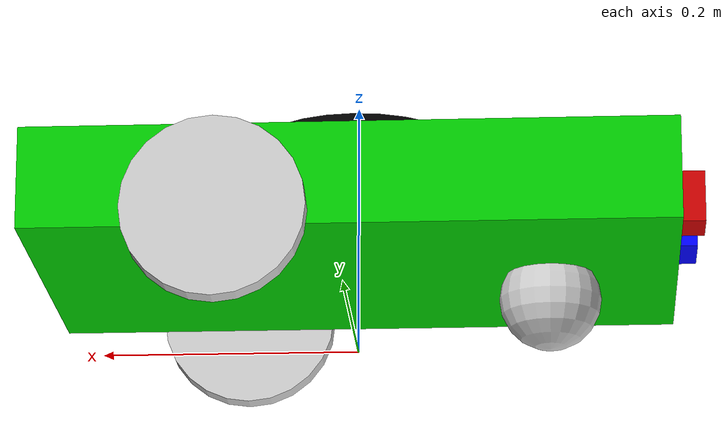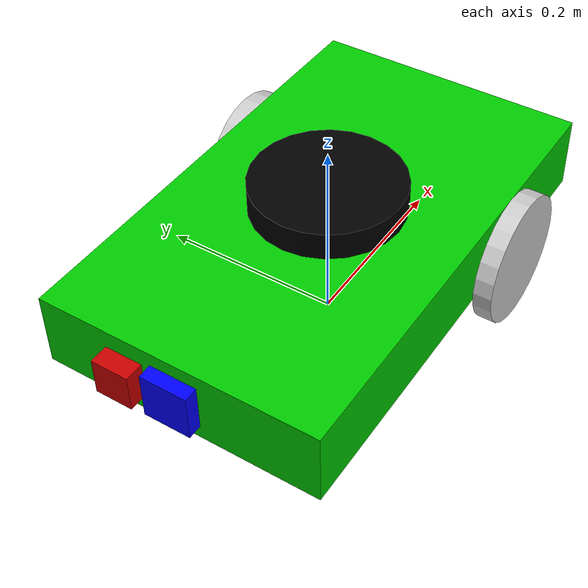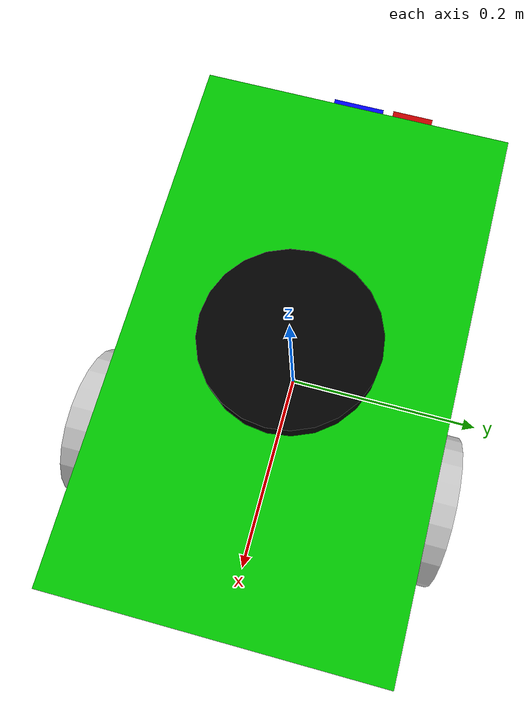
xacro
<?xml version="1.0"?>
<robot name="mobile_robot" xmlns:xacro="http://www.ros.org/wiki/xacro">

  <xacro:include filename="$(find mobile_description)/urdf/mech/mobile_robot_base.urdf.xacro"/>
  <xacro:include filename="$(find mobile_description)/urdf/sensors/rgbd_camera.urdf.xacro"/>
  <xacro:include filename="$(find mobile_description)/urdf/sensors/lidar.urdf.xacro"/>
  <xacro:include filename="$(find mobile_description)/urdf/sensors/imu.urdf.xacro"/>
  <xacro:include filename="$(find mobile_description)/urdf/control/mobile_robot_ros2_control.urdf.xacro"/>
  <xacro:include filename="$(find mobile_description)/urdf/control/gazebo_sim_ros2_control.urdf.xacro"/>

  <xacro:mobile_robot_base/>
  <xacro:rgbd_camera/>
  <xacro:lidar_sensor parent="base_link" xyz="0.0 0.0 ${base_height/2 + lidar_length/2}" rpy="0 0 3.14159"/>
  <xacro:imu_link parent="base_link" xyz="${-(base_length/2)-(imu_length/2)} ${(rgbd_camera_width/2)+(imu_width/2)+(offset)} 0" rpy="0 0 0"/>
  <xacro:mobile_robot_ros2_control use_gazebo="true"/>
  <xacro:load_gazebo_sim_ros2_control_plugin robot_name="mobile_robot" use_gazebo="true"/>

</robot>

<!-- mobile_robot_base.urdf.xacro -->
<robot xmlns:xacro="http://www.ros.org/wiki/xacro">
<xacro:property name="base_length" value="0.5" />
<xacro:property name="base_width" value="0.3" />
<xacro:property name="base_height" value="0.08" />
<xacro:property name="offset" value="0.01" />
<xacro:property name="cylindrical_wheel_radius" value="0.07" />
<xacro:property name="cylindrical_wheel_length" value="0.02" />
<xacro:property name="caster_wheel_radius" value="0.04" />
<xacro:property name="base_mass" value="5.0" />
<xacro:property name="cylindrical_wheel_mass" value="0.5" />
<xacro:property name="caster_wheel_mass" value="0.3" />

<xacro:macro name="mobile_robot_base">

    <material name="green">
        <color rgba="0 0.8 0 1"/>
    </material>

    <material name="grey">
        <color rgba="0.8 0.8 0.8 1.0"/>
    </material>

    <link name="base_footprint" />

    <link name="base_link">
        <visual>
            <geometry>
                <box size="${base_length} ${base_width} ${base_height}"/>
            </geometry>
            <origin xyz="0 0 0" rpy="0 0 0"/>
            <material name="green"/>
        </visual>
        <collision>
            <geometry>
                <box size="${base_length} ${base_width} ${base_height}"/>
            </geometry>
            <origin xyz="0 0 0" rpy="0 0 0"/>
        </collision>
        <inertial>
            <mass value="${base_mass}"/>
            <inertia ixx="${(1/12) * base_mass * (base_width * base_width + base_height * base_height)}"
                iyy="${(1/12) * base_mass * (base_length * base_length + base_height * base_height)}"
                izz="${(1/12) * base_mass * (base_length * base_length + base_width * base_width)}"
                ixy="0" ixz="0" iyz="0"/>
            <origin xyz="0 0 0" rpy="0 0 0"/>
        </inertial>
    </link>

    <link name="right_wheel_link">
        <visual>
            <geometry>
                <cylinder radius="${cylindrical_wheel_radius}" length="${cylindrical_wheel_length}"/>
            </geometry>
            <origin xyz="0 0 0" rpy="1.5708 0 0"/>
            <material name="grey"/>
        </visual>
        <collision>
            <geometry>
                <cylinder radius="${cylindrical_wheel_radius}" length="${cylindrical_wheel_length}"/>
            </geometry>
            <origin xyz="0 0 0" rpy="1.5708 0 0"/>
        </collision>
        <inertial>
            <mass value="${cylindrical_wheel_mass}"/>
            <inertia ixx="${(1/12) * cylindrical_wheel_mass * (3 * cylindrical_wheel_radius * cylindrical_wheel_radius + cylindrical_wheel_length * cylindrical_wheel_length)}"
                iyy="${(1/2) * cylindrical_wheel_mass * cylindrical_wheel_radius * cylindrical_wheel_radius}"
                izz="${(1/12) * cylindrical_wheel_mass * (3 * cylindrical_wheel_radius * cylindrical_wheel_radius + cylindrical_wheel_length * cylindrical_wheel_length)}"
                ixy="0" ixz="0" iyz="0"/>
            <origin xyz="0 0 0" rpy="0 0 0"/>
        </inertial>
    </link>

    <link name="left_wheel_link">
        <visual>
            <geometry>
                <cylinder radius="${cylindrical_wheel_radius}" length="${cylindrical_wheel_length}"/>
            </geometry>
            <origin xyz="0 0 0" rpy="1.5708 0 0"/>
            <material name="grey"/>
        </visual>
        <collision>
            <geometry>
                <cylinder radius="${cylindrical_wheel_radius}" length="${cylindrical_wheel_length}"/>
            </geometry>
            <origin xyz="0 0 0" rpy="1.5708 0 0"/>
        </collision>
        <inertial>
            <mass value="${cylindrical_wheel_mass}"/>
            <inertia ixx="${(1/12) * cylindrical_wheel_mass * (3 * cylindrical_wheel_radius * cylindrical_wheel_radius + cylindrical_wheel_length * cylindrical_wheel_length)}"
                iyy="${(1/2) * cylindrical_wheel_mass * cylindrical_wheel_radius * cylindrical_wheel_radius}"
                izz="${(1/12) * cylindrical_wheel_mass * (3 * cylindrical_wheel_radius * cylindrical_wheel_radius + cylindrical_wheel_length * cylindrical_wheel_length)}"
                ixy="0" ixz="0" iyz="0"/>
            <origin xyz="0 0 0" rpy="0 0 0"/>
        </inertial>
    </link>

    <link name="caster_wheel">
        <visual>
            <geometry>
                <sphere radius="${caster_wheel_radius}"/>
            </geometry>
            <origin xyz="0 0 0" rpy="0 0 0"/>
            <material name="grey"/>
        </visual>
        <collision>
            <geometry>
                <sphere radius="${caster_wheel_radius}"/>
            </geometry>
            <origin xyz="0 0 0" rpy="0 0 0"/>
        </collision>
        <inertial>
            <mass value="${caster_wheel_mass}"/>
            <inertia ixx="${(2/5) * caster_wheel_mass * caster_wheel_radius * caster_wheel_radius}"
                iyy="${(2/5) * caster_wheel_mass * caster_wheel_radius * caster_wheel_radius}"
                izz="${(2/5) * caster_wheel_mass * caster_wheel_radius * caster_wheel_radius}"
                ixy="0" ixz="0" iyz="0"/>
            <origin xyz="0 0 0" rpy="0 0 0"/>
        </inertial>
    </link>

    <joint name="base_footprint_joint" type="fixed">
        <parent link="base_footprint"/>
        <child link="base_link"/>
        <origin xyz="0 0 0.1" rpy="0 0 0"/>
    </joint>

    <joint name="base_right_wheel_joint" type="continuous">
        <parent link="base_link"/>
        <child link="right_wheel_link"/>
        <axis xyz="0 -1 0"/>
        <origin xyz="0.1 0.16 -0.03" rpy="0 0 0"/>
    </joint>

    <joint name="base_left_wheel_joint" type="continuous">
        <parent link="base_link"/>
        <child link="left_wheel_link"/>
        <axis xyz="0 -1 0"/>
        <origin xyz="0.1 -0.16 -0.03" rpy="0 0 0"/>
    </joint>

    <joint name="base_caster_wheel_joint" type="fixed">
        <parent link="base_link"/>
        <child link="caster_wheel"/>
        <axis xyz="0 0 1"/>
        <origin xyz="-0.15 0 -0.06" rpy="0 0 0"/>
    </joint>

    <gazebo reference="left_wheel_link">
        <mu1>1.2</mu1>
        <mu2>1.2</mu2>
        <kp>1000000.0</kp>
        <kd>10.0</kd>
    </gazebo>

    <gazebo reference="right_wheel_link">
        <mu1>1.2</mu1>
        <mu2>1.2</mu2>
        <kp>1000000.0</kp>
        <kd>10.0</kd>
    </gazebo>

    <gazebo reference="caster_wheel_link">
        <mu1>0.001</mu1>
        <mu2>0.001</mu2>
    </gazebo>

</xacro:macro>
</robot>

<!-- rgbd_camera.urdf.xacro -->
<robot xmlns:xacro="http://www.ros.org/wiki/xacro">
<xacro:property name="rgbd_camera_length" value="0.015" />
<xacro:property name="rgbd_camera_width" value="0.05" />
<xacro:property name="rgbd_camera_height" value="0.05" />
<xacro:property name="rgbd_camera_mass" value="0.1" />

<xacro:property name="base_length" value="0.5" />
<xacro:property name="base_width" value="0.3" />
<xacro:property name="base_height" value="0.08" />

<xacro:macro name="rgbd_camera">

    <material name="blue">
        <color rgba="0 0 1 1"/>
    </material>

    <link name="rgbd_camera_link">
        <visual>
            <geometry>
                <box size="${rgbd_camera_length} ${rgbd_camera_width} ${rgbd_camera_height}"/>
            </geometry>
            <origin xyz="0 0 0" rpy="0 0 0"/>
            <material name="blue"/>
        </visual>
        <collision>
            <geometry>
                <box size="${rgbd_camera_length} ${rgbd_camera_width} ${rgbd_camera_height}"/>
            </geometry>
            <origin xyz="0 0 0" rpy="0 0 0"/>
        </collision>
        <inertial>
            <mass value="${rgbd_camera_mass}"/>
            <inertia ixx="${(1/12) * rgbd_camera_mass * (rgbd_camera_width * rgbd_camera_width + rgbd_camera_height * rgbd_camera_height)}"
                iyy="${(1/12) * rgbd_camera_mass * (rgbd_camera_length * rgbd_camera_length + rgbd_camera_height * rgbd_camera_height)}"
                izz="${(1/12) * rgbd_camera_mass * (rgbd_camera_length * rgbd_camera_length + rgbd_camera_width * rgbd_camera_width)}"
                ixy="0" ixz="0" iyz="0"/>
            <origin xyz="0 0 0" rpy="0 0 0"/>
        </inertial>
    </link>

    <joint name="base_rgbd_camera_joint" type="fixed">
        <parent link="base_link"/>
        <child link="rgbd_camera_link"/>
        <origin xyz="${-(base_length/2)-(rgbd_camera_length/2)} 0 0" rpy="0 0 0"/>
    </joint>

    <link name="rgbd_optical_frame"/>
    <joint name="rgbd_optical_joint" type="fixed">
      <parent link="rgbd_camera_link"/>
      <child link="rgbd_optical_frame"/>
      <origin xyz="0 0 0" rpy="-1.5708 0 -1.5708"/>
    </joint>

    <gazebo reference="rgbd_camera_link">
        <sensor type="rgbd_camera" name="rgbd_camera">
            <always_on>1</always_on>
            <update_rate>30.0</update_rate>
            <camera>
                <horizontal_fov>1.0472</horizontal_fov>
                <image>
                    <width>640</width>
                    <height>480</height>
                    <format>R8G8B8</format>
                </image>
                <clip>
                    <near>0.1</near>
                    <far>10.0</far>
                </clip>
            </camera>
            <frame>rgbd_camera_link</frame>
            <topic>/camera</topic>
            <visualize>true</visualize>
        </sensor>
    </gazebo>

</xacro:macro>
</robot>

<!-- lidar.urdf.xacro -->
<robot xmlns:xacro="http://www.ros.org/wiki/xacro">
<xacro:property name="lidar_radius" value="0.08" />
<xacro:property name="lidar_length" value="0.03" />
<xacro:property name="lidar_mass" value="0.2" />

<xacro:macro name="lidar_sensor" params="parent xyz rpy">
    <material name="black">
        <color rgba="0 0 0 1"/>
    </material>

    <link name="laser_frame">
        <visual>
            <geometry>
                <cylinder radius="${lidar_radius}" length="${lidar_length}"/>
            </geometry>
            <material name="black"/>
        </visual>
        <collision>
            <geometry>
                <cylinder radius="${lidar_radius}" length="${lidar_length}"/>
            </geometry>
        </collision>
        <inertial>
            <mass value="${lidar_mass}"/>
            <inertia ixx="${(1/12) * lidar_mass * (3 * lidar_radius * lidar_radius + lidar_length * lidar_length)}"
                iyy="${(1/12) * lidar_mass * (3 * lidar_radius * lidar_radius + lidar_length * lidar_length)}"
                izz="${(1/2) * lidar_mass * lidar_radius * lidar_radius}"
                ixy="0" ixz="0" iyz="0"/>
            <origin xyz="0 0 0" rpy="0 0 0"/>
        </inertial>
    </link>

    <joint name="laser_frame_joint" type="fixed">
        <parent link="${parent}"/>
        <child link="laser_frame"/>
        <origin xyz="${xyz}" rpy="${rpy}"/>
    </joint>

    <gazebo reference="laser_frame">
        <sensor type="gpu_lidar" name="lidar_sensor">
            <always_on>true</always_on>
            <update_rate>10.0</update_rate>
            <topic>scan</topic>
            <visualize>false</visualize>
            <ray>
                <scan>
                    <horizontal>
                        <samples>720</samples>
                        <resolution>1</resolution>
                        <min_angle>-3.14159</min_angle>
                        <max_angle>3.14159</max_angle>
                    </horizontal>
                    <vertical>
                        <samples>1</samples>
                        <resolution>1</resolution>
                        <min_angle>0</min_angle>
                        <max_angle>0</max_angle>
                    </vertical>
                </scan>
                <range>
                    <min>0.1</min>
                    <max>30</max>
                    <resolution>0.01</resolution>
                </range>
            </ray>
            <gz_frame_id>laser_frame</gz_frame_id>
            <frame_id>laser_frame</frame_id>
        </sensor>
    </gazebo>

</xacro:macro>
</robot>

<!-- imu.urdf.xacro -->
<robot xmlns:xacro="http://www.ros.org/wiki/xacro">
<xacro:property name="imu_length" value="0.02" />
<xacro:property name="imu_width" value="0.04" />
<xacro:property name="imu_height" value="0.04" />
<xacro:property name="imu_mass" value="0.1" />

<xacro:macro name="imu_link" params="parent xyz rpy">
    <material name="red">
        <color rgba="0.8 0 0 1"/>
    </material>

    <link name="imu_link">
        <visual>
            <geometry>
                <box size="${imu_length} ${imu_width} ${imu_height}"/>
            </geometry>
            <material name="red"/>
        </visual>
        <collision>
            <geometry>
                <box size="${imu_length} ${imu_width} ${imu_height}"/>
            </geometry>
        </collision>
        <inertial>
            <mass value="${imu_mass}"/>
            <inertia ixx="${(1/12) * imu_mass * (imu_width * imu_width + imu_height * imu_height)}"
                iyy="${(1/12) * imu_mass * (imu_length * imu_length + imu_height * imu_height)}"
                izz="${(1/12) * imu_mass * (imu_length * imu_length + imu_width * imu_width)}"
                ixy="0" ixz="0" iyz="0"/>
            <origin xyz="0 0 0" rpy="0 0 0"/>
        </inertial>
    </link>

    <joint name="imu_joint" type="fixed">
        <parent link="${parent}"/>
        <child link="imu_link"/>
        <origin xyz="${xyz}" rpy="${rpy}"/>
    </joint>

    <gazebo reference="imu_link">
        <sensor type="imu" name="imu_sensor">
            <always_on>1</always_on>
            <update_rate>100</update_rate>
            <topic>imu/data</topic>
            <gz_frame_id>imu_link</gz_frame_id>
            <imu>
                <angular_velocity>
                    <noise type="gaussian">
                        <mean>0.0</mean>
                        <stddev>0.0002</stddev>
                    </noise>
                </angular_velocity>
                <linear_acceleration>
                    <noise type="gaussian">
                        <mean>0.0</mean>
                        <stddev>0.0003</stddev>
                    </noise>
                </linear_acceleration>
            </imu>
        </sensor>
    </gazebo>

</xacro:macro>
</robot>
